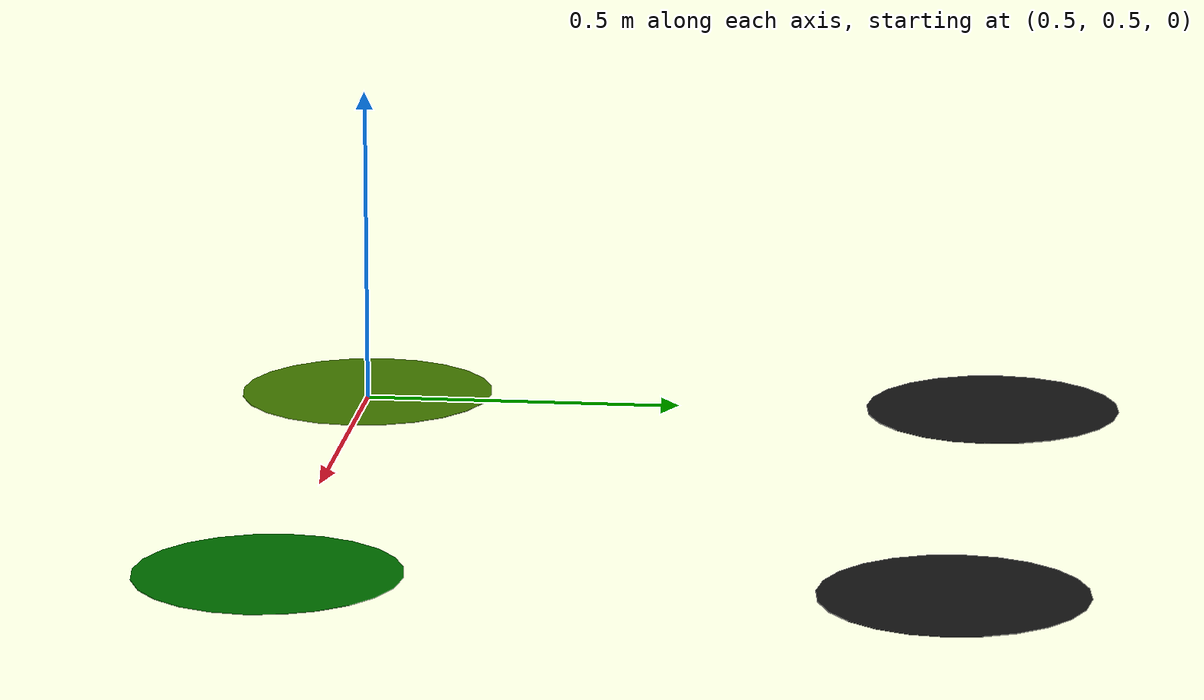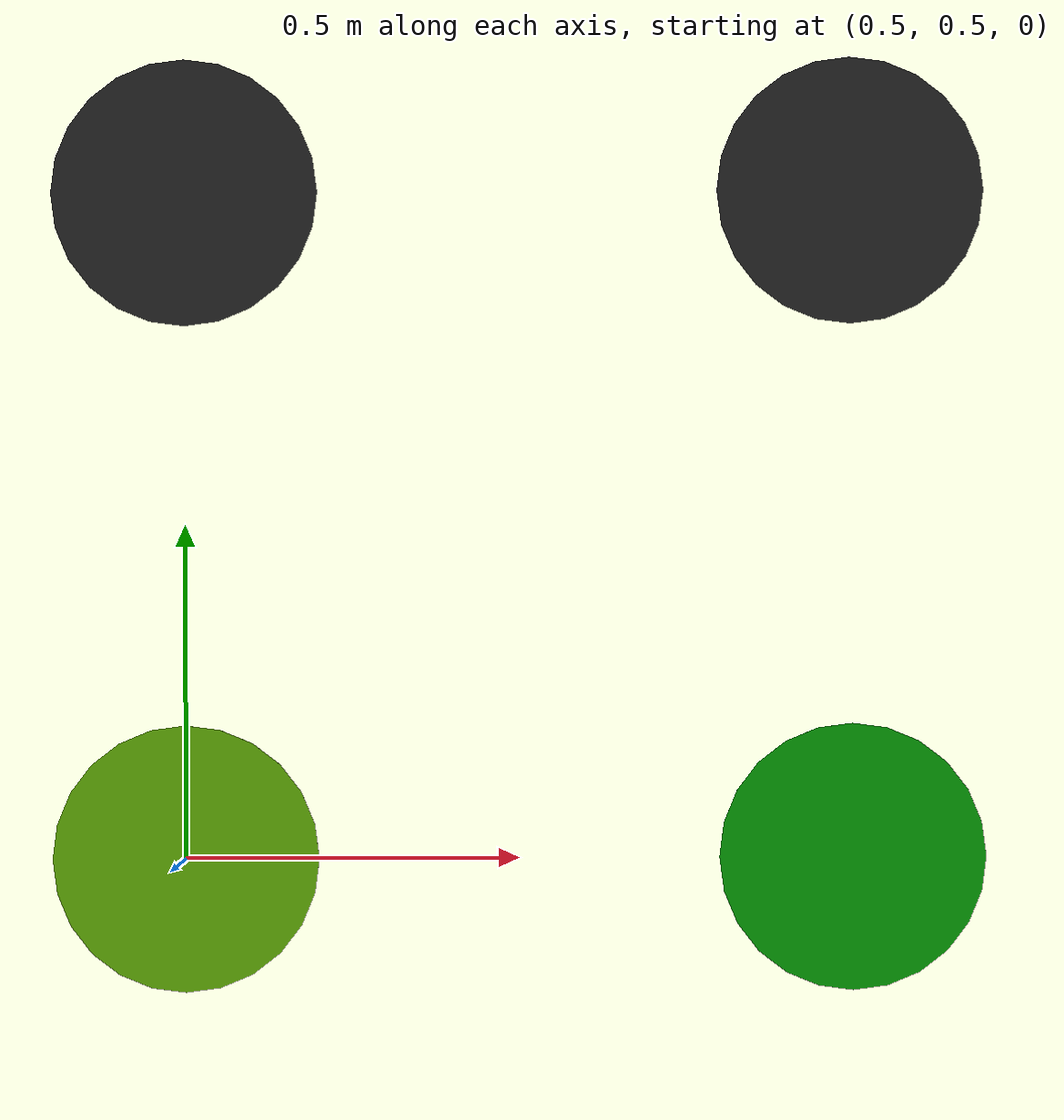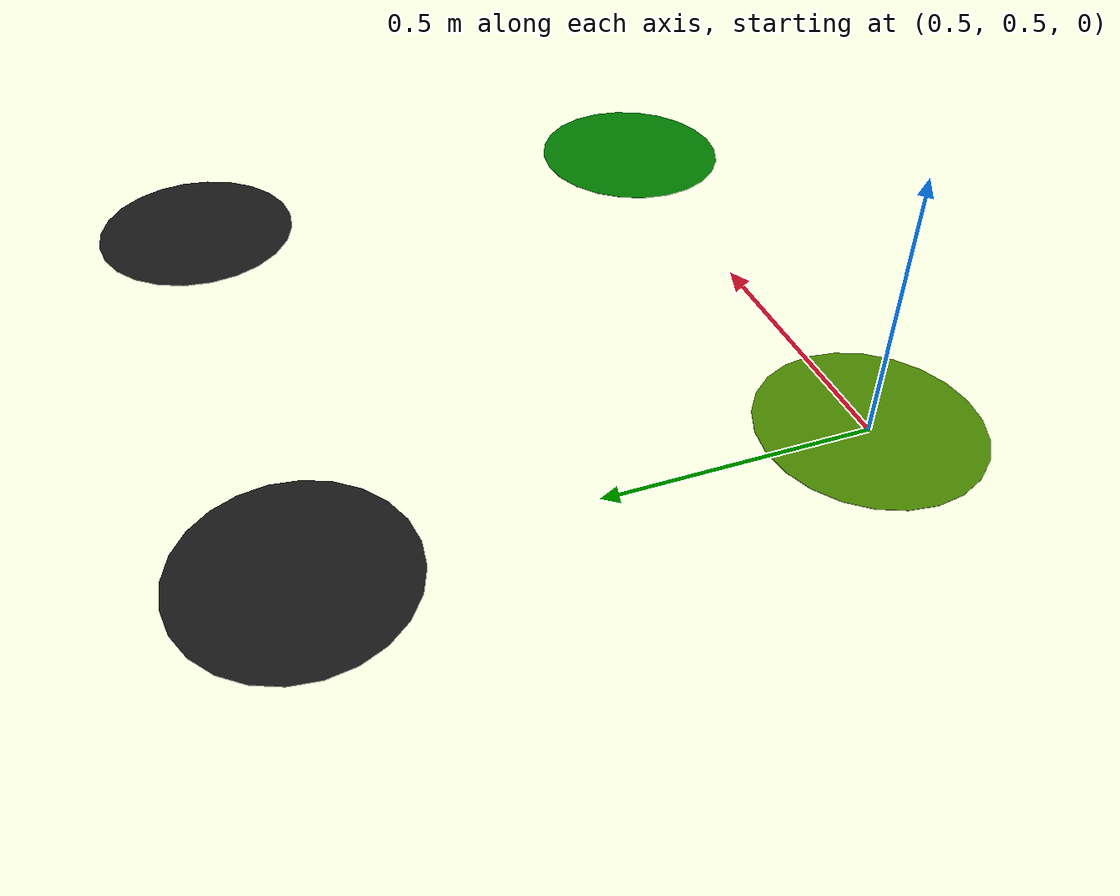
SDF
<?xml version="1.0" ?>
<sdf version="1.7">
  <model name="forest_4_ball_state_13">
    <pose>0 0 0.01 0 0 0</pose>
    <static>true</static>

    <!-- Top-left ball -->
    <link name="tree_1">
      <pose>0.5 1.5 -0.0005 0 0 0</pose>
      <visual name="tree_1_visual">
        <geometry>
          <cylinder>
            <radius>0.2</radius>
            <length>0.001</length>
          </cylinder>
        </geometry>
        <material>
          <ambient>0.1 0.1 0.1 1</ambient>
          <diffuse>0.1 0.1 0.1 1</diffuse>
        </material>
      </visual>
    </link>

    <!-- Top-right ball -->
    <link name="tree_2">
      <pose>1.5 1.5 -0.0005 0 0 0</pose>
      <visual name="tree_2_visual">
        <geometry>
          <cylinder>
            <radius>0.2</radius>
            <length>0.001</length>
          </cylinder>
        </geometry>
        <material>
          <ambient>0.1 0.1 0.1 1</ambient>
          <diffuse>0.1 0.1 0.1 1</diffuse>
        </material>
      </visual>
    </link>

    <!-- Bottom-left ball -->
    <link name="tree_3">
      <pose>0.5 0.5 -0.0005 0 0 0</pose>
      <visual name="tree_3_visual">
        <geometry>
          <cylinder>
            <radius>0.2</radius>
            <length>0.001</length>
          </cylinder>
        </geometry>
        <material>
          <ambient>0.3 0.55 0.0 1</ambient>
          <diffuse>0.3 0.55 0.0 1</diffuse>
        </material>
      </visual>
    </link>

    <!-- Bottom-right ball -->
    <link name="tree_4">
      <pose>1.5 0.5 -0.0005 0 0 0</pose>
      <visual name="tree_4_visual">
        <geometry>
          <cylinder>
            <radius>0.2</radius>
            <length>0.001</length>
          </cylinder>
        </geometry>
        <material>
          <ambient>0.0 0.5 0.0 1</ambient>
          <diffuse>0.0 0.5 0.0 1</diffuse>
        </material>
      </visual>
    </link>

  </model>
</sdf>
